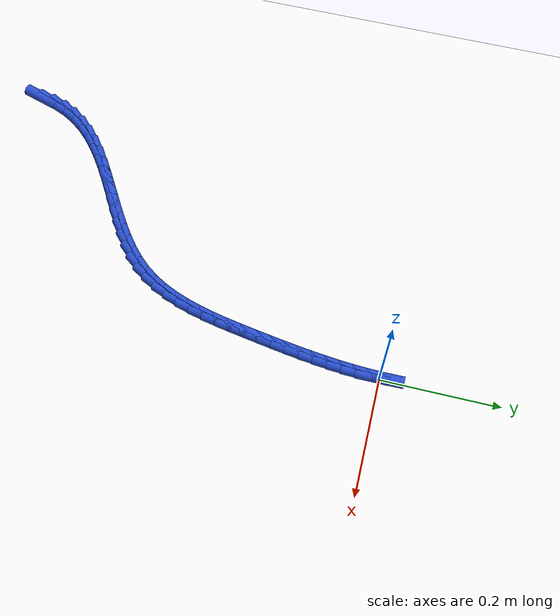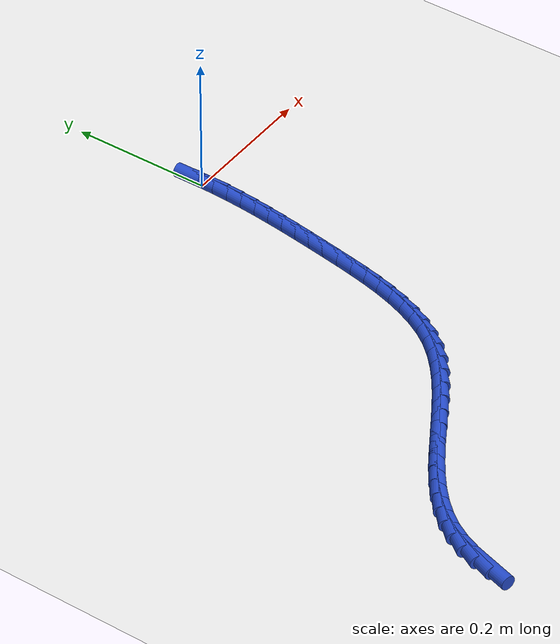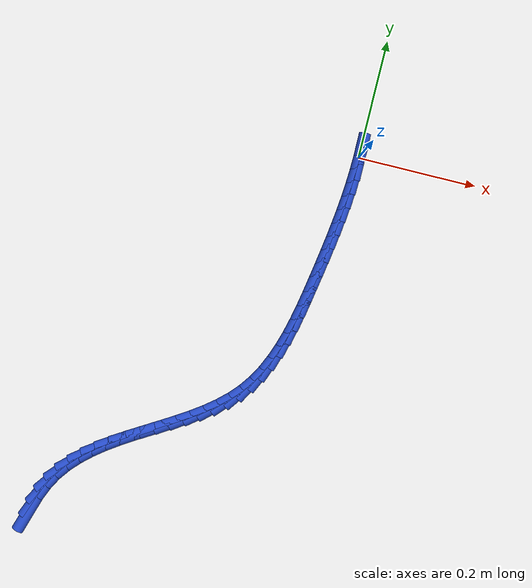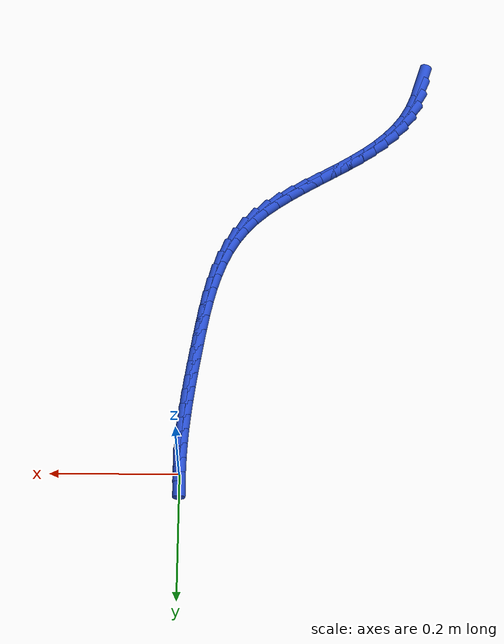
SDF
<sdf version="1.6">
 <world name="default">
  <model name="ground_plane">
   <static>1</static>
   <link name="link">
    <collision name="collision">
     <geometry><plane><normal>0 0 1</normal><size>100 100</size></plane></geometry>
     <surface><friction><ode><mu>100</mu><mu2>50</mu2></ode></friction></surface>
    </collision>
    <visual name="visual">
     <cast_shadows>0</cast_shadows>
     <geometry><plane><normal>0 0 1</normal><size>100 100</size></plane></geometry>
     <material>
      <script><uri>file://media/materials/scripts/gazebo.material</uri><name>Gazebo/WhiteGlow</name></script>
     </material>
    </visual>
   </link>
  </model>
  <model name="line">
   <link name="link_0">
    <pose>-4.336808689942018e-18 -1.3877787807814457e-17 0.01 0 1.57 -1.56425743358107</pose>
    <collision name="collision">
     <geometry><cylinder><radius>0.01</radius><length>0.08</length></cylinder></geometry>
    </collision>
    <visual name="visual">
     <material>
      <script><name>Gazebo/Blue</name><uri>file://media/materials/scripts/gazebo.material</uri></script>
     </material>
     <geometry><cylinder><radius>0.01</radius><length>0.08</length></cylinder></geometry>
    </visual>
   </link>
   <link name="link_255">
    <pose>-0.3912627348507201 -0.7000245325553579 0.01 0 1.57 1.2711553868542287</pose>
    <collision name="collision">
     <geometry><cylinder><radius>0.01</radius><length>0.08</length></cylinder></geometry>
    </collision>
    <visual name="visual">
     <material>
      <script><name>Gazebo/Blue</name><uri>file://media/materials/scripts/gazebo.material</uri></script>
     </material>
     <geometry><cylinder><radius>0.01</radius><length>0.08</length></cylinder></geometry>
    </visual>
   </link>
   <link name="link_256">
    <pose>-0.38399459384262413 -0.6764986913966027 0.01 0 1.57 1.178299173116786</pose>
    <collision name="collision">
     <geometry><cylinder><radius>0.01</radius><length>0.08</length></cylinder></geometry>
    </collision>
    <visual name="visual">
     <material>
      <script><name>Gazebo/Blue</name><uri>file://media/materials/scripts/gazebo.material</uri></script>
     </material>
     <geometry><cylinder><radius>0.01</radius><length>0.08</length></cylinder></geometry>
    </visual>
   </link>
   <link name="link_257">
    <pose>-0.37481404509098165 -0.6543222213093959 0.01 0 1.57 1.057665404738926</pose>
    <collision name="collision">
     <geometry><cylinder><radius>0.01</radius><length>0.08</length></cylinder></geometry>
    </collision>
    <visual name="visual">
     <material>
      <script><name>Gazebo/Blue</name><uri>file://media/materials/scripts/gazebo.material</uri></script>
     </material>
     <geometry><cylinder><radius>0.01</radius><length>0.08</length></cylinder></geometry>
    </visual>
   </link>
   <link name="link_258">
    <pose>-0.36327196340683343 -0.6338385236729194 0.01 0 1.57 0.9305028366121303</pose>
    <collision name="collision">
     <geometry><cylinder><radius>0.01</radius><length>0.08</length></cylinder></geometry>
    </collision>
    <visual name="visual">
     <material>
      <script><name>Gazebo/Blue</name><uri>file://media/materials/scripts/gazebo.material</uri></script>
     </material>
     <geometry><cylinder><radius>0.01</radius><length>0.08</length></cylinder></geometry>
    </visual>
   </link>
   <link name="link_259">
    <pose>-0.3493104317680239 -0.6150982154420562 0.01 0 1.57 0.8200658684076724</pose>
    <collision name="collision">
     <geometry><cylinder><radius>0.01</radius><length>0.08</length></cylinder></geometry>
    </collision>
    <visual name="visual">
     <material>
      <script><name>Gazebo/Blue</name><uri>file://media/materials/scripts/gazebo.material</uri></script>
     </material>
     <geometry><cylinder><radius>0.01</radius><length>0.08</length></cylinder></geometry>
    </visual>
   </link>
   <link name="link_260">
    <pose>-0.3332417087084136 -0.5978748701808438 0.01 0 1.57 0.7290722522510968</pose>
    <collision name="collision">
     <geometry><cylinder><radius>0.01</radius><length>0.08</length></cylinder></geometry>
    </collision>
    <visual name="visual">
     <material>
      <script><name>Gazebo/Blue</name><uri>file://media/materials/scripts/gazebo.material</uri></script>
     </material>
     <geometry><cylinder><radius>0.01</radius><length>0.08</length></cylinder></geometry>
    </visual>
   </link>
   <link name="link_261">
    <pose>-0.3153925923134954 -0.5819311798955827 0.01 0 1.57 0.6574217121948087</pose>
    <collision name="collision">
     <geometry><cylinder><radius>0.01</radius><length>0.08</length></cylinder></geometry>
    </collision>
    <visual name="visual">
     <material>
      <script><name>Gazebo/Blue</name><uri>file://media/materials/scripts/gazebo.material</uri></script>
     </material>
     <geometry><cylinder><radius>0.01</radius><length>0.08</length></cylinder></geometry>
    </visual>
   </link>
   <link name="link_262">
    <pose>-0.29608988066876246 -0.5670298365925733 0.01 0 1.57 0.603981095912242</pose>
    <collision name="collision">
     <geometry><cylinder><radius>0.01</radius><length>0.08</length></cylinder></geometry>
    </collision>
    <visual name="visual">
     <material>
      <script><name>Gazebo/Blue</name><uri>file://media/materials/scripts/gazebo.material</uri></script>
     </material>
     <geometry><cylinder><radius>0.01</radius><length>0.08</length></cylinder></geometry>
    </visual>
   </link>
   <link name="link_263">
    <pose>-0.2756603718597079 -0.5529335322781159 0.01 0 1.57 0.5673621721305777</pose>
    <collision name="collision">
     <geometry><cylinder><radius>0.01</radius><length>0.08</length></cylinder></geometry>
    </collision>
    <visual name="visual">
     <material>
      <script><name>Gazebo/Blue</name><uri>file://media/materials/scripts/gazebo.material</uri></script>
     </material>
     <geometry><cylinder><radius>0.01</radius><length>0.08</length></cylinder></geometry>
    </visual>
   </link>
   <link name="link_264">
    <pose>-0.25443086397182474 -0.5394049589585111 0.01 0 1.57 0.546378763295241</pose>
    <collision name="collision">
     <geometry><cylinder><radius>0.01</radius><length>0.08</length></cylinder></geometry>
    </collision>
    <visual name="visual">
     <material>
      <script><name>Gazebo/Blue</name><uri>file://media/materials/scripts/gazebo.material</uri></script>
     </material>
     <geometry><cylinder><radius>0.01</radius><length>0.08</length></cylinder></geometry>
    </visual>
   </link>
   <link name="link_265">
    <pose>-0.2327281550906067 -0.5262068086400595 0.01 0 1.57 0.5402703436143257</pose>
    <collision name="collision">
     <geometry><cylinder><radius>0.01</radius><length>0.08</length></cylinder></geometry>
    </collision>
    <visual name="visual">
     <material>
      <script><name>Gazebo/Blue</name><uri>file://media/materials/scripts/gazebo.material</uri></script>
     </material>
     <geometry><cylinder><radius>0.01</radius><length>0.08</length></cylinder></geometry>
    </visual>
   </link>
   <link name="link_266">
    <pose>-0.21087904330154544 -0.5131017733290606 0.01 0 1.57 0.5487924630513858</pose>
    <collision name="collision">
     <geometry><cylinder><radius>0.01</radius><length>0.08</length></cylinder></geometry>
    </collision>
    <visual name="visual">
     <material>
      <script><name>Gazebo/Blue</name><uri>file://media/materials/scripts/gazebo.material</uri></script>
     </material>
     <geometry><cylinder><radius>0.01</radius><length>0.08</length></cylinder></geometry>
    </visual>
   </link>
   <link name="link_267">
    <pose>-0.18921032669013485 -0.49985254503181564 0.01 0 1.57 0.5722361802223063</pose>
    <collision name="collision">
     <geometry><cylinder><radius>0.01</radius><length>0.08</length></cylinder></geometry>
    </collision>
    <visual name="visual">
     <material>
      <script><name>Gazebo/Blue</name><uri>file://media/materials/scripts/gazebo.material</uri></script>
     </material>
     <geometry><cylinder><radius>0.01</radius><length>0.08</length></cylinder></geometry>
    </visual>
   </link>
   <link name="link_268">
    <pose>-0.16804880334186792 -0.48622181575462475 0.01 0 1.57 0.6113947555068482</pose>
    <collision name="collision">
     <geometry><cylinder><radius>0.01</radius><length>0.08</length></cylinder></geometry>
    </collision>
    <visual name="visual">
     <material>
      <script><name>Gazebo/Blue</name><uri>file://media/materials/scripts/gazebo.material</uri></script>
     </material>
     <geometry><cylinder><radius>0.01</radius><length>0.08</length></cylinder></geometry>
    </visual>
   </link>
   <link name="link_269">
    <pose>-0.14772127134223767 -0.47197227750378834 0.01 0 1.57 0.667453723921264</pose>
    <collision name="collision">
     <geometry><cylinder><radius>0.01</radius><length>0.08</length></cylinder></geometry>
    </collision>
    <visual name="visual">
     <material>
      <script><name>Gazebo/Blue</name><uri>file://media/materials/scripts/gazebo.material</uri></script>
     </material>
     <geometry><cylinder><radius>0.01</radius><length>0.08</length></cylinder></geometry>
    </visual>
   </link>
   <link name="link_270">
    <pose>-0.12855452877673723 -0.4568666222856069 0.01 0 1.57 0.7417378520950059</pose>
    <collision name="collision">
     <geometry><cylinder><radius>0.01</radius><length>0.08</length></cylinder></geometry>
    </collision>
    <visual name="visual">
     <material>
      <script><name>Gazebo/Blue</name><uri>file://media/materials/scripts/gazebo.material</uri></script>
     </material>
     <geometry><cylinder><radius>0.01</radius><length>0.08</length></cylinder></geometry>
    </visual>
   </link>
   <link name="link_271">
    <pose>-0.11087537373085964 -0.4406675421063808 0.01 0 1.57 0.8352166027712278</pose>
    <collision name="collision">
     <geometry><cylinder><radius>0.01</radius><length>0.08</length></cylinder></geometry>
    </collision>
    <visual name="visual">
     <material>
      <script><name>Gazebo/Blue</name><uri>file://media/materials/scripts/gazebo.material</uri></script>
     </material>
     <geometry><cylinder><radius>0.01</radius><length>0.08</length></cylinder></geometry>
    </visual>
   </link>
   <link name="link_272">
    <pose>-0.09501060429009792 -0.4231377289724104 0.01 0 1.57 0.9448760835073112</pose>
    <collision name="collision">
     <geometry><cylinder><radius>0.01</radius><length>0.08</length></cylinder></geometry>
    </collision>
    <visual name="visual">
     <material>
      <script><name>Gazebo/Blue</name><uri>file://media/materials/scripts/gazebo.material</uri></script>
     </material>
     <geometry><cylinder><radius>0.01</radius><length>0.08</length></cylinder></geometry>
    </visual>
   </link>
   <link name="link_273">
    <pose>-0.08123493187797258 -0.404081199484816 0.01 0 1.57 1.0495561024400484</pose>
    <collision name="collision">
     <geometry><cylinder><radius>0.01</radius><length>0.08</length></cylinder></geometry>
    </collision>
    <visual name="visual">
     <material>
      <script><name>Gazebo/Blue</name><uri>file://media/materials/scripts/gazebo.material</uri></script>
     </material>
     <geometry><cylinder><radius>0.01</radius><length>0.08</length></cylinder></geometry>
    </visual>
   </link>
   <link name="link_274">
    <pose>-0.06946597473958073 -0.3835852813718341 0.01 0 1.57 1.1396965634961411</pose>
    <collision name="collision">
     <geometry><cylinder><radius>0.01</radius><length>0.08</length></cylinder></geometry>
    </collision>
    <visual name="visual">
     <material>
      <script><name>Gazebo/Blue</name><uri>file://media/materials/scripts/gazebo.material</uri></script>
     </material>
     <geometry><cylinder><radius>0.01</radius><length>0.08</length></cylinder></geometry>
    </visual>
   </link>
   <link name="link_275">
    <pose>-0.059471587568422114 -0.36185612199525313 0.01 0 1.57 1.215148750811977</pose>
    <collision name="collision">
     <geometry><cylinder><radius>0.01</radius><length>0.08</length></cylinder></geometry>
    </collision>
    <visual name="visual">
     <material>
      <script><name>Gazebo/Blue</name><uri>file://media/materials/scripts/gazebo.material</uri></script>
     </material>
     <geometry><cylinder><radius>0.01</radius><length>0.08</length></cylinder></geometry>
    </visual>
   </link>
   <link name="link_276">
    <pose>-0.05101911304456124 -0.33910027493885697 0.01 0 1.57 1.276601291323</pose>
    <collision name="collision">
     <geometry><cylinder><radius>0.01</radius><length>0.08</length></cylinder></geometry>
    </collision>
    <visual name="visual">
     <material>
      <script><name>Gazebo/Blue</name><uri>file://media/materials/scripts/gazebo.material</uri></script>
     </material>
     <geometry><cylinder><radius>0.01</radius><length>0.08</length></cylinder></geometry>
    </visual>
   </link>
   <link name="link_277">
    <pose>-0.04387589384806253 -0.3155242937864293 0.01 0 1.57 1.3250695656750768</pose>
    <collision name="collision">
     <geometry><cylinder><radius>0.01</radius><length>0.08</length></cylinder></geometry>
    </collision>
    <visual name="visual">
     <material>
      <script><name>Gazebo/Blue</name><uri>file://media/materials/scripts/gazebo.material</uri></script>
     </material>
     <geometry><cylinder><radius>0.01</radius><length>0.08</length></cylinder></geometry>
    </visual>
   </link>
   <link name="link_278">
    <pose>-0.03780927265899045 -0.29133473212175387 0.01 0 1.57 1.3615702160870866</pose>
    <collision name="collision">
     <geometry><cylinder><radius>0.01</radius><length>0.08</length></cylinder></geometry>
    </collision>
    <visual name="visual">
     <material>
      <script><name>Gazebo/Blue</name><uri>file://media/materials/scripts/gazebo.material</uri></script>
     </material>
     <geometry><cylinder><radius>0.01</radius><length>0.08</length></cylinder></geometry>
    </visual>
   </link>
   <link name="link_279">
    <pose>-0.032586592157409444 -0.26673814352861414 0.01 0 1.57 1.3869312073621356</pose>
    <collision name="collision">
     <geometry><cylinder><radius>0.01</radius><length>0.08</length></cylinder></geometry>
    </collision>
    <visual name="visual">
     <material>
      <script><name>Gazebo/Blue</name><uri>file://media/materials/scripts/gazebo.material</uri></script>
     </material>
     <geometry><cylinder><radius>0.01</radius><length>0.08</length></cylinder></geometry>
    </visual>
   </link>
   <link name="link_280">
    <pose>-0.02797519502338415 -0.24194108159079505 0.01 0 1.57 1.401688655031441</pose>
    <collision name="collision">
     <geometry><cylinder><radius>0.01</radius><length>0.08</length></cylinder></geometry>
    </collision>
    <visual name="visual">
     <material>
      <script><name>Gazebo/Blue</name><uri>file://media/materials/scripts/gazebo.material</uri></script>
     </material>
     <geometry><cylinder><radius>0.01</radius><length>0.08</length></cylinder></geometry>
    </visual>
   </link>
   <link name="link_281">
    <pose>-0.02374242393697872 -0.21715009989207845 0.01 0 1.57 1.4077396583003186</pose>
    <collision name="collision">
     <geometry><cylinder><radius>0.01</radius><length>0.08</length></cylinder></geometry>
    </collision>
    <visual name="visual">
     <material>
      <script><name>Gazebo/Blue</name><uri>file://media/materials/scripts/gazebo.material</uri></script>
     </material>
     <geometry><cylinder><radius>0.01</radius><length>0.08</length></cylinder></geometry>
    </visual>
   </link>
   <link name="link_282">
    <pose>-0.019693859112659404 -0.192541350510151 0.01 0 1.57 1.4139865333867754</pose>
    <collision name="collision">
     <geometry><cylinder><radius>0.01</radius><length>0.08</length></cylinder></geometry>
    </collision>
    <visual name="visual">
     <material>
      <script><name>Gazebo/Blue</name><uri>file://media/materials/scripts/gazebo.material</uri></script>
     </material>
     <geometry><cylinder><radius>0.01</radius><length>0.08</length></cylinder></geometry>
    </visual>
   </link>
   <link name="link_283">
    <pose>-0.01583460468766863 -0.16813235009157332 0.01 0 1.57 1.4233800722192298</pose>
    <collision name="collision">
     <geometry><cylinder><radius>0.01</radius><length>0.08</length></cylinder></geometry>
    </collision>
    <visual name="visual">
     <material>
      <script><name>Gazebo/Blue</name><uri>file://media/materials/scripts/gazebo.material</uri></script>
     </material>
     <geometry><cylinder><radius>0.01</radius><length>0.08</length></cylinder></geometry>
    </visual>
   </link>
   <link name="link_284">
    <pose>-0.012234631449245898 -0.14388904177309958 0.01 0 1.57 1.4359719575432006</pose>
    <collision name="collision">
     <geometry><cylinder><radius>0.01</radius><length>0.08</length></cylinder></geometry>
    </collision>
    <visual name="visual">
     <material>
      <script><name>Gazebo/Blue</name><uri>file://media/materials/scripts/gazebo.material</uri></script>
     </material>
     <geometry><cylinder><radius>0.01</radius><length>0.08</length></cylinder></geometry>
    </visual>
   </link>
   <link name="link_285">
    <pose>-0.008963944809236943 -0.11977734116250761 0.01 0 1.57 1.4517905196677516</pose>
    <collision name="collision">
     <geometry><cylinder><radius>0.01</radius><length>0.08</length></cylinder></geometry>
    </collision>
    <visual name="visual">
     <material>
      <script><name>Gazebo/Blue</name><uri>file://media/materials/scripts/gazebo.material</uri></script>
     </material>
     <geometry><cylinder><radius>0.01</radius><length>0.08</length></cylinder></geometry>
    </visual>
   </link>
   <link name="link_286">
    <pose>-0.0060925501794875225 -0.09576316386757536 0.01 0 1.57 1.4708373437937212</pose>
    <collision name="collision">
     <geometry><cylinder><radius>0.01</radius><length>0.08</length></cylinder></geometry>
    </collision>
    <visual name="visual">
     <material>
      <script><name>Gazebo/Blue</name><uri>file://media/materials/scripts/gazebo.material</uri></script>
     </material>
     <geometry><cylinder><radius>0.01</radius><length>0.08</length></cylinder></geometry>
    </visual>
   </link>
   <link name="link_287">
    <pose>-0.0036904529718433713 -0.07181242549608055 0.01 0 1.57 1.4930816462688936</pose>
    <collision name="collision">
     <geometry><cylinder><radius>0.01</radius><length>0.08</length></cylinder></geometry>
    </collision>
    <visual name="visual">
     <material>
      <script><name>Gazebo/Blue</name><uri>file://media/materials/scripts/gazebo.material</uri></script>
     </material>
     <geometry><cylinder><radius>0.01</radius><length>0.08</length></cylinder></geometry>
    </visual>
   </link>
   <link name="link_288">
    <pose>-0.0018276585981502338 -0.04789104165580113 0.01 0 1.57 1.5184543035833094</pose>
    <collision name="collision">
     <geometry><cylinder><radius>0.01</radius><length>0.08</length></cylinder></geometry>
    </collision>
    <visual name="visual">
     <material>
      <script><name>Gazebo/Blue</name><uri>file://media/materials/scripts/gazebo.material</uri></script>
     </material>
     <geometry><cylinder><radius>0.01</radius><length>0.08</length></cylinder></geometry>
    </visual>
   </link>
   <link name="link_289">
    <pose>-0.000574172470253861 -0.023964927954514926 0.01 0 1.57 1.546842044702866</pose>
    <collision name="collision">
     <geometry><cylinder><radius>0.01</radius><length>0.08</length></cylinder></geometry>
    </collision>
    <visual name="visual">
     <material>
      <script><name>Gazebo/Blue</name><uri>file://media/materials/scripts/gazebo.material</uri></script>
     </material>
     <geometry><cylinder><radius>0.01</radius><length>0.08</length></cylinder></geometry>
    </visual>
   </link>
  </model>
 </world>
</sdf>
